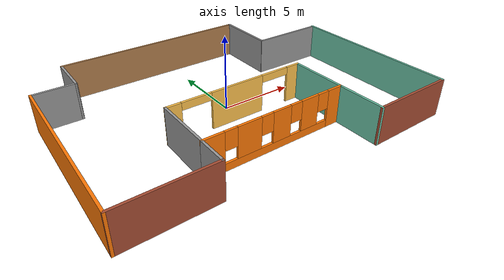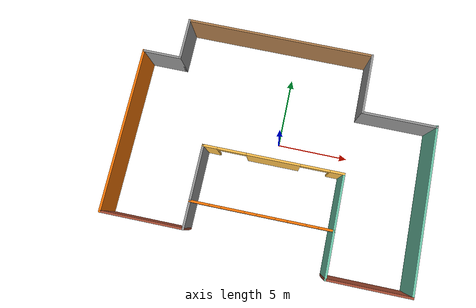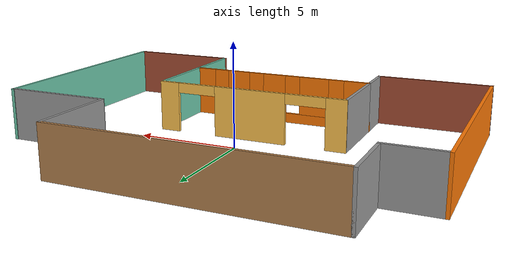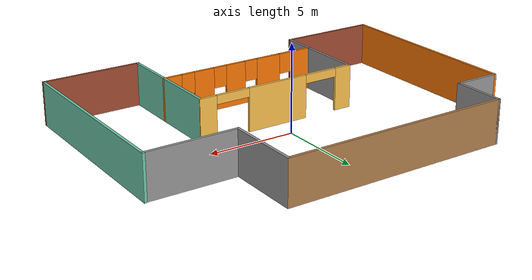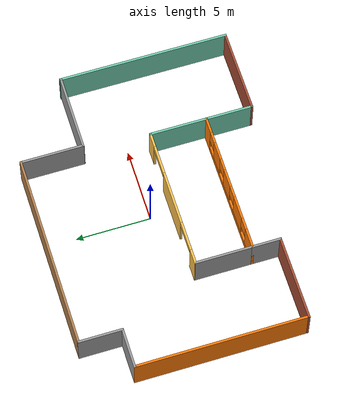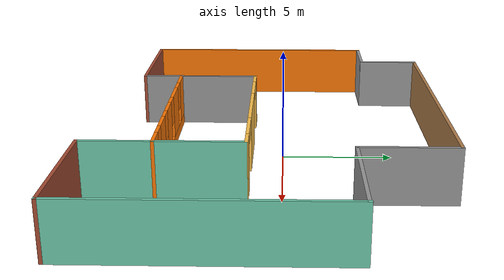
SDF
<?xml version='1.0'?>
<sdf version='1.6'>
  <model name='Building'>
    <pose frame=''>-0.12037 -0.613929 0 0 -0 0</pose>
    <link name='Wall_0'>
      <collision name='Wall_0_Collision'>
        <geometry>
          <box>
            <size>13.25 0.15 2.5</size>
          </box>
        </geometry>
        <pose frame=''>0 0 1.25 0 -0 0</pose>
      </collision>
      <visual name='Wall_0_Visual'>
        <pose frame=''>0 0 1.25 0 -0 0</pose>
        <geometry>
          <box>
            <size>13.25 0.15 2.5</size>
          </box>
        </geometry>
        <material>
          <script>
            <uri>file://media/materials/scripts/gazebo.material</uri>
            <name>Gazebo/Wood</name>
          </script>
          <ambient>1 1 1 1</ambient>
        </material>
        <meta>
          <layer>0</layer>
        </meta>
      </visual>
      <pose frame=''>-1.25 7.725 0 0 -0 0</pose>
    </link>
    <link name='Wall_1'>
      <collision name='Wall_1_Collision'>
        <geometry>
          <box>
            <size>4.27249 0.15 2.5</size>
          </box>
        </geometry>
        <pose frame=''>0 0 1.25 0 -0 0</pose>
      </collision>
      <visual name='Wall_1_Visual'>
        <pose frame=''>0 0 1.25 0 -0 0</pose>
        <geometry>
          <box>
            <size>4.27249 0.15 2.5</size>
          </box>
        </geometry>
        <material>
          <script>
            <uri>file://media/materials/scripts/gazebo.material</uri>
            <name>Gazebo/Grey</name>
          </script>
          <ambient>1 1 1 1</ambient>
        </material>
        <meta>
          <layer>0</layer>
        </meta>
      </visual>
      <pose frame=''>5.3 5.66375 0 0 -0 -1.5708</pose>
    </link>
    <link name='Wall_10'>
      <collision name='Wall_10_Collision'>
        <geometry>
          <box>
            <size>2.75 0.15 2.5</size>
          </box>
        </geometry>
        <pose frame=''>0 0 1.25 0 -0 0</pose>
      </collision>
      <visual name='Wall_10_Visual'>
        <pose frame=''>0 0 1.25 0 -0 0</pose>
        <geometry>
          <box>
            <size>2.75 0.15 2.5</size>
          </box>
        </geometry>
        <material>
          <script>
            <uri>file://media/materials/scripts/gazebo.material</uri>
            <name>Gazebo/Grey</name>
          </script>
          <ambient>1 1 1 1</ambient>
        </material>
        <meta>
          <layer>0</layer>
        </meta>
      </visual>
      <pose frame=''>-9.1 4.875 0 0 -0 0</pose>
    </link>
    <link name='Wall_11'>
      <collision name='Wall_11_Collision'>
        <geometry>
          <box>
            <size>3 0.15 2.5</size>
          </box>
        </geometry>
        <pose frame=''>0 0 1.25 0 -0 0</pose>
      </collision>
      <visual name='Wall_11_Visual'>
        <pose frame=''>0 0 1.25 0 -0 0</pose>
        <geometry>
          <box>
            <size>3 0.15 2.5</size>
          </box>
        </geometry>
        <material>
          <script>
            <uri>file://media/materials/scripts/gazebo.material</uri>
            <name>Gazebo/Grey</name>
          </script>
          <ambient>1 1 1 1</ambient>
        </material>
        <meta>
          <layer>0</layer>
        </meta>
      </visual>
      <pose frame=''>-7.8 6.3 0 0 -0 1.5708</pose>
    </link>
    <link name='Wall_15'>
      <collision name='Wall_15_Collision'>
        <geometry>
          <box>
            <size>3.89729 0.15 2.5</size>
          </box>
        </geometry>
        <pose frame=''>0 0 1.25 0 -0 0</pose>
      </collision>
      <visual name='Wall_15_Visual'>
        <pose frame=''>0 0 1.25 0 -0 0</pose>
        <geometry>
          <box>
            <size>3.89729 0.15 2.5</size>
          </box>
        </geometry>
        <material>
          <script>
            <uri>file://media/materials/scripts/gazebo.material</uri>
            <name>Gazebo/Grey</name>
          </script>
          <ambient>1 1 1 1</ambient>
        </material>
        <meta>
          <layer>0</layer>
        </meta>
      </visual>
      <pose frame=''>-4.8 -2.75136 0 0 -0 1.5708</pose>
    </link>
    <link name='Wall_16'>
      <pose frame=''>0 -0.837255 0 0 -0 0</pose>
      <visual name='Wall_16_Visual_0'>
        <pose frame=''>-4.35572 0 1.25 0 -0 0</pose>
        <geometry>
          <box>
            <size>1.03855 0.15 2.5</size>
          </box>
        </geometry>
        <material>
          <script>
            <uri>file://media/materials/scripts/gazebo.material</uri>
            <name>Gazebo/Grey</name>
          </script>
          <ambient>1 0.764706 0.305882 1</ambient>
        </material>
        <meta>
          <layer>0</layer>
        </meta>
      </visual>
      <collision name='Wall_16_Collision_0'>
        <geometry>
          <box>
            <size>1.03855 0.15 2.5</size>
          </box>
        </geometry>
        <pose frame=''>-4.35572 0 1.25 0 -0 0</pose>
      </collision>
      <visual name='Wall_16_Visual_1'>
        <pose frame=''>0.006927 0 1.25 0 -0 0</pose>
        <geometry>
          <box>
            <size>3.68675 0.15 2.5</size>
          </box>
        </geometry>
        <material>
          <script>
            <uri>file://media/materials/scripts/gazebo.material</uri>
            <name>Gazebo/Grey</name>
          </script>
          <ambient>1 0.764706 0.305882 1</ambient>
        </material>
        <meta>
          <layer>0</layer>
        </meta>
      </visual>
      <collision name='Wall_16_Collision_1'>
        <geometry>
          <box>
            <size>3.68675 0.15 2.5</size>
          </box>
        </geometry>
        <pose frame=''>0.006927 0 1.25 0 -0 0</pose>
      </collision>
      <visual name='Wall_16_Visual_2'>
        <pose frame=''>4.36265 0 1.25 0 -0 0</pose>
        <geometry>
          <box>
            <size>1.0247 0.15 2.5</size>
          </box>
        </geometry>
        <material>
          <script>
            <uri>file://media/materials/scripts/gazebo.material</uri>
            <name>Gazebo/Grey</name>
          </script>
          <ambient>1 0.764706 0.305882 1</ambient>
        </material>
        <meta>
          <layer>0</layer>
        </meta>
      </visual>
      <collision name='Wall_16_Collision_2'>
        <geometry>
          <box>
            <size>1.0247 0.15 2.5</size>
          </box>
        </geometry>
        <pose frame=''>4.36265 0 1.25 0 -0 0</pose>
      </collision>
      <visual name='Wall_16_Visual_3'>
        <pose frame=''>-2.83645 0 2.25 0 -0 0</pose>
        <geometry>
          <box>
            <size>2 0.15 0.5</size>
          </box>
        </geometry>
        <material>
          <script>
            <uri>file://media/materials/scripts/gazebo.material</uri>
            <name>Gazebo/Grey</name>
          </script>
          <ambient>1 0.764706 0.305882 1</ambient>
        </material>
        <meta>
          <layer>0</layer>
        </meta>
      </visual>
      <collision name='Wall_16_Collision_3'>
        <geometry>
          <box>
            <size>2 0.15 0.5</size>
          </box>
        </geometry>
        <pose frame=''>-2.83645 0 2.25 0 -0 0</pose>
      </collision>
      <visual name='Wall_16_Visual_4'>
        <pose frame=''>2.8503 0 2.25 0 -0 0</pose>
        <geometry>
          <box>
            <size>2 0.15 0.5</size>
          </box>
        </geometry>
        <material>
          <script>
            <uri>file://media/materials/scripts/gazebo.material</uri>
            <name>Gazebo/Grey</name>
          </script>
          <ambient>1 0.764706 0.305882 1</ambient>
        </material>
        <meta>
          <layer>0</layer>
        </meta>
      </visual>
      <collision name='Wall_16_Collision_4'>
        <geometry>
          <box>
            <size>2 0.15 0.5</size>
          </box>
        </geometry>
        <pose frame=''>2.8503 0 2.25 0 -0 0</pose>
      </collision>
    </link>
    <link name='Wall_17'>
      <collision name='Wall_17_Collision'>
        <geometry>
          <box>
            <size>3.89729 0.15 2.5</size>
          </box>
        </geometry>
        <pose frame=''>0 0 1.25 0 -0 0</pose>
      </collision>
      <visual name='Wall_17_Visual'>
        <pose frame=''>0 0 1.25 0 -0 0</pose>
        <geometry>
          <box>
            <size>3.89729 0.15 2.5</size>
          </box>
        </geometry>
        <material>
          <script>
            <uri>file://media/materials/scripts/gazebo.material</uri>
            <name>Gazebo/Grey</name>
          </script>
          <ambient>0.435294 0.796078 0.67451 1</ambient>
        </material>
        <meta>
          <layer>0</layer>
        </meta>
      </visual>
      <pose frame=''>4.8 -2.75136 0 0 -0 -1.5708</pose>
    </link>
    <link name='Wall_2'>
      <collision name='Wall_2_Collision'>
        <geometry>
          <box>
            <size>5.25 0.15 2.5</size>
          </box>
        </geometry>
        <pose frame=''>0 0 1.25 0 -0 0</pose>
      </collision>
      <visual name='Wall_2_Visual'>
        <pose frame=''>0 0 1.25 0 -0 0</pose>
        <geometry>
          <box>
            <size>5.25 0.15 2.5</size>
          </box>
        </geometry>
        <material>
          <script>
            <uri>file://media/materials/scripts/gazebo.material</uri>
            <name>Gazebo/Grey</name>
          </script>
          <ambient>1 1 1 1</ambient>
        </material>
        <meta>
          <layer>0</layer>
        </meta>
      </visual>
      <pose frame=''>7.85 3.56733 0 0 -0 0</pose>
    </link>
    <link name='Wall_3'>
      <collision name='Wall_3_Collision'>
        <geometry>
          <box>
            <size>11.4775 0.15 2.5</size>
          </box>
        </geometry>
        <pose frame=''>0 0 1.25 0 -0 0</pose>
      </collision>
      <visual name='Wall_3_Visual'>
        <pose frame=''>0 0 1.25 0 -0 0</pose>
        <geometry>
          <box>
            <size>11.4775 0.15 2.5</size>
          </box>
        </geometry>
        <material>
          <script>
            <uri>file://media/materials/scripts/gazebo.material</uri>
            <name>Gazebo/Grey</name>
          </script>
          <ambient>0.435294 0.796078 0.67451 1</ambient>
        </material>
        <meta>
          <layer>0</layer>
        </meta>
      </visual>
      <pose frame=''>10.4 -2.06125 0 0 -0 -1.5708</pose>
    </link>
    <link name='Wall_4'>
      <collision name='Wall_4_Collision'>
        <geometry>
          <box>
            <size>5.75 0.15 2.5</size>
          </box>
        </geometry>
        <pose frame=''>0 0 1.25 0 -0 0</pose>
      </collision>
      <visual name='Wall_4_Visual'>
        <pose frame=''>0 0 1.25 0 -0 0</pose>
        <geometry>
          <box>
            <size>5.75 0.15 2.5</size>
          </box>
        </geometry>
        <material>
          <script>
            <uri>file://media/materials/scripts/gazebo.material</uri>
            <name>Gazebo/Bricks</name>
          </script>
          <ambient>1 1 1 1</ambient>
        </material>
        <meta>
          <layer>0</layer>
        </meta>
      </visual>
      <pose frame=''>7.6 -7.725 0 0 -0 3.14159</pose>
    </link>
    <link name='Wall_5'>
      <collision name='Wall_5_Collision'>
        <geometry>
          <box>
            <size>3.25 0.15 2.5</size>
          </box>
        </geometry>
        <pose frame=''>0 0 1.25 0 -0 0</pose>
      </collision>
      <visual name='Wall_5_Visual'>
        <pose frame=''>0 0 1.25 0 -0 0</pose>
        <geometry>
          <box>
            <size>3.25 0.15 2.5</size>
          </box>
        </geometry>
        <material>
          <script>
            <uri>file://media/materials/scripts/gazebo.material</uri>
            <name>Gazebo/Grey</name>
          </script>
          <ambient>0.435294 0.796078 0.67451 1</ambient>
        </material>
        <meta>
          <layer>0</layer>
        </meta>
      </visual>
      <pose frame=''>4.8 -6.175 0 0 -0 1.5708</pose>
    </link>
    <link name='Wall_6'>
      <pose frame=''>0 -4.625 0 0 -0 3.14159</pose>
      <visual name='Wall_6_Visual_0'>
        <pose frame=''>-4.31909 0 1.25 0 -0 0</pose>
        <geometry>
          <box>
            <size>1.11182 0.15 2.5</size>
          </box>
        </geometry>
        <material>
          <script>
            <uri>file://media/materials/scripts/gazebo.material</uri>
            <name>Gazebo/Grey</name>
          </script>
          <ambient>0.996078 0.47451 0.0196078 1</ambient>
        </material>
        <meta>
          <layer>0</layer>
        </meta>
      </visual>
      <collision name='Wall_6_Collision_0'>
        <geometry>
          <box>
            <size>1.11182 0.15 2.5</size>
          </box>
        </geometry>
        <pose frame=''>-4.31909 0 1.25 0 -0 0</pose>
      </collision>
      <visual name='Wall_6_Visual_1'>
        <pose frame=''>0.555911 0 0.25 0 -0 0</pose>
        <geometry>
          <box>
            <size>8.63818 0.15 0.5</size>
          </box>
        </geometry>
        <material>
          <script>
            <uri>file://media/materials/scripts/gazebo.material</uri>
            <name>Gazebo/Grey</name>
          </script>
          <ambient>0.996078 0.47451 0.0196078 1</ambient>
        </material>
        <meta>
          <layer>0</layer>
        </meta>
      </visual>
      <collision name='Wall_6_Collision_1'>
        <geometry>
          <box>
            <size>8.63818 0.15 0.5</size>
          </box>
        </geometry>
        <pose frame=''>0.555911 0 0.25 0 -0 0</pose>
      </collision>
      <visual name='Wall_6_Visual_2'>
        <pose frame=''>-2.33907 0 1.5 0 -0 0</pose>
        <geometry>
          <box>
            <size>1.24822 0.15 2</size>
          </box>
        </geometry>
        <material>
          <script>
            <uri>file://media/materials/scripts/gazebo.material</uri>
            <name>Gazebo/Grey</name>
          </script>
          <ambient>0.996078 0.47451 0.0196078 1</ambient>
        </material>
        <meta>
          <layer>0</layer>
        </meta>
      </visual>
      <collision name='Wall_6_Collision_2'>
        <geometry>
          <box>
            <size>1.24822 0.15 2</size>
          </box>
        </geometry>
        <pose frame=''>-2.33907 0 1.5 0 -0 0</pose>
      </collision>
      <visual name='Wall_6_Visual_3'>
        <pose frame=''>-0.290856 0 1.5 0 -0 0</pose>
        <geometry>
          <box>
            <size>1.24822 0.15 2</size>
          </box>
        </geometry>
        <material>
          <script>
            <uri>file://media/materials/scripts/gazebo.material</uri>
            <name>Gazebo/Grey</name>
          </script>
          <ambient>0.996078 0.47451 0.0196078 1</ambient>
        </material>
        <meta>
          <layer>0</layer>
        </meta>
      </visual>
      <collision name='Wall_6_Collision_3'>
        <geometry>
          <box>
            <size>1.24822 0.15 2</size>
          </box>
        </geometry>
        <pose frame=''>-0.290856 0 1.5 0 -0 0</pose>
      </collision>
      <visual name='Wall_6_Visual_4'>
        <pose frame=''>1.91696 0 1.5 0 -0 0</pose>
        <geometry>
          <box>
            <size>1.56742 0.15 2</size>
          </box>
        </geometry>
        <material>
          <script>
            <uri>file://media/materials/scripts/gazebo.material</uri>
            <name>Gazebo/Grey</name>
          </script>
          <ambient>0.996078 0.47451 0.0196078 1</ambient>
        </material>
        <meta>
          <layer>0</layer>
        </meta>
      </visual>
      <collision name='Wall_6_Collision_4'>
        <geometry>
          <box>
            <size>1.56742 0.15 2</size>
          </box>
        </geometry>
        <pose frame=''>1.91696 0 1.5 0 -0 0</pose>
      </collision>
      <visual name='Wall_6_Visual_5'>
        <pose frame=''>4.18783 0 1.5 0 -0 0</pose>
        <geometry>
          <box>
            <size>1.37433 0.15 2</size>
          </box>
        </geometry>
        <material>
          <script>
            <uri>file://media/materials/scripts/gazebo.material</uri>
            <name>Gazebo/Grey</name>
          </script>
          <ambient>0.996078 0.47451 0.0196078 1</ambient>
        </material>
        <meta>
          <layer>0</layer>
        </meta>
      </visual>
      <collision name='Wall_6_Collision_5'>
        <geometry>
          <box>
            <size>1.37433 0.15 2</size>
          </box>
        </geometry>
        <pose frame=''>4.18783 0 1.5 0 -0 0</pose>
      </collision>
      <visual name='Wall_6_Visual_6'>
        <pose frame=''>-3.36318 0 1.9 0 -0 0</pose>
        <geometry>
          <box>
            <size>0.8 0.15 1.2</size>
          </box>
        </geometry>
        <material>
          <script>
            <uri>file://media/materials/scripts/gazebo.material</uri>
            <name>Gazebo/Grey</name>
          </script>
          <ambient>0.996078 0.47451 0.0196078 1</ambient>
        </material>
        <meta>
          <layer>0</layer>
        </meta>
      </visual>
      <collision name='Wall_6_Collision_6'>
        <geometry>
          <box>
            <size>0.8 0.15 1.2</size>
          </box>
        </geometry>
        <pose frame=''>-3.36318 0 1.9 0 -0 0</pose>
      </collision>
      <visual name='Wall_6_Visual_7'>
        <pose frame=''>-1.31496 0 1.9 0 -0 0</pose>
        <geometry>
          <box>
            <size>0.8 0.15 1.2</size>
          </box>
        </geometry>
        <material>
          <script>
            <uri>file://media/materials/scripts/gazebo.material</uri>
            <name>Gazebo/Grey</name>
          </script>
          <ambient>0.996078 0.47451 0.0196078 1</ambient>
        </material>
        <meta>
          <layer>0</layer>
        </meta>
      </visual>
      <collision name='Wall_6_Collision_7'>
        <geometry>
          <box>
            <size>0.8 0.15 1.2</size>
          </box>
        </geometry>
        <pose frame=''>-1.31496 0 1.9 0 -0 0</pose>
      </collision>
      <visual name='Wall_6_Visual_8'>
        <pose frame=''>0.733252 0 1.9 0 -0 0</pose>
        <geometry>
          <box>
            <size>0.8 0.15 1.2</size>
          </box>
        </geometry>
        <material>
          <script>
            <uri>file://media/materials/scripts/gazebo.material</uri>
            <name>Gazebo/Grey</name>
          </script>
          <ambient>0.996078 0.47451 0.0196078 1</ambient>
        </material>
        <meta>
          <layer>0</layer>
        </meta>
      </visual>
      <collision name='Wall_6_Collision_8'>
        <geometry>
          <box>
            <size>0.8 0.15 1.2</size>
          </box>
        </geometry>
        <pose frame=''>0.733252 0 1.9 0 -0 0</pose>
      </collision>
      <visual name='Wall_6_Visual_9'>
        <pose frame=''>3.10067 0 1.9 0 -0 0</pose>
        <geometry>
          <box>
            <size>0.8 0.15 1.2</size>
          </box>
        </geometry>
        <material>
          <script>
            <uri>file://media/materials/scripts/gazebo.material</uri>
            <name>Gazebo/Grey</name>
          </script>
          <ambient>0.996078 0.47451 0.0196078 1</ambient>
        </material>
        <meta>
          <layer>0</layer>
        </meta>
      </visual>
      <collision name='Wall_6_Collision_9'>
        <geometry>
          <box>
            <size>0.8 0.15 1.2</size>
          </box>
        </geometry>
        <pose frame=''>3.10067 0 1.9 0 -0 0</pose>
      </collision>
    </link>
    <link name='Wall_7'>
      <collision name='Wall_7_Collision'>
        <geometry>
          <box>
            <size>2 0.15 2.5</size>
          </box>
        </geometry>
        <pose frame=''>0 0 1.25 0 -0 0</pose>
      </collision>
      <visual name='Wall_7_Visual'>
        <pose frame=''>0 0 1.25 0 -0 0</pose>
        <geometry>
          <box>
            <size>2 0.15 2.5</size>
          </box>
        </geometry>
        <material>
          <script>
            <uri>file://media/materials/scripts/gazebo.material</uri>
            <name>Gazebo/Grey</name>
          </script>
          <ambient>1 1 1 1</ambient>
        </material>
        <meta>
          <layer>0</layer>
        </meta>
      </visual>
      <pose frame=''>-4.8 -5.55 0 0 -0 -1.5708</pose>
    </link>
    <link name='Wall_8'>
      <collision name='Wall_8_Collision'>
        <geometry>
          <box>
            <size>5.75 0.15 2.5</size>
          </box>
        </geometry>
        <pose frame=''>0 0 1.25 0 -0 0</pose>
      </collision>
      <visual name='Wall_8_Visual'>
        <pose frame=''>0 0 1.25 0 -0 0</pose>
        <geometry>
          <box>
            <size>5.75 0.15 2.5</size>
          </box>
        </geometry>
        <material>
          <script>
            <uri>file://media/materials/scripts/gazebo.material</uri>
            <name>Gazebo/Bricks</name>
          </script>
          <ambient>1 1 1 1</ambient>
        </material>
        <meta>
          <layer>0</layer>
        </meta>
      </visual>
      <pose frame=''>-7.6 -6.475 0 0 -0 3.14159</pose>
    </link>
    <link name='Wall_9'>
      <collision name='Wall_9_Collision'>
        <geometry>
          <box>
            <size>11.5 0.15 2.5</size>
          </box>
        </geometry>
        <pose frame=''>0 0 1.25 0 -0 0</pose>
      </collision>
      <visual name='Wall_9_Visual'>
        <pose frame=''>0 0 1.25 0 -0 0</pose>
        <geometry>
          <box>
            <size>11.5 0.15 2.5</size>
          </box>
        </geometry>
        <material>
          <script>
            <uri>file://media/materials/scripts/gazebo.material</uri>
            <name>Gazebo/Grey</name>
          </script>
          <ambient>0.996078 0.47451 0.0196078 1</ambient>
        </material>
        <meta>
          <layer>0</layer>
        </meta>
      </visual>
      <pose frame=''>-10.4 -0.8 0 0 -0 1.5708</pose>
    </link>
    <static>1</static>
  </model>
</sdf>
